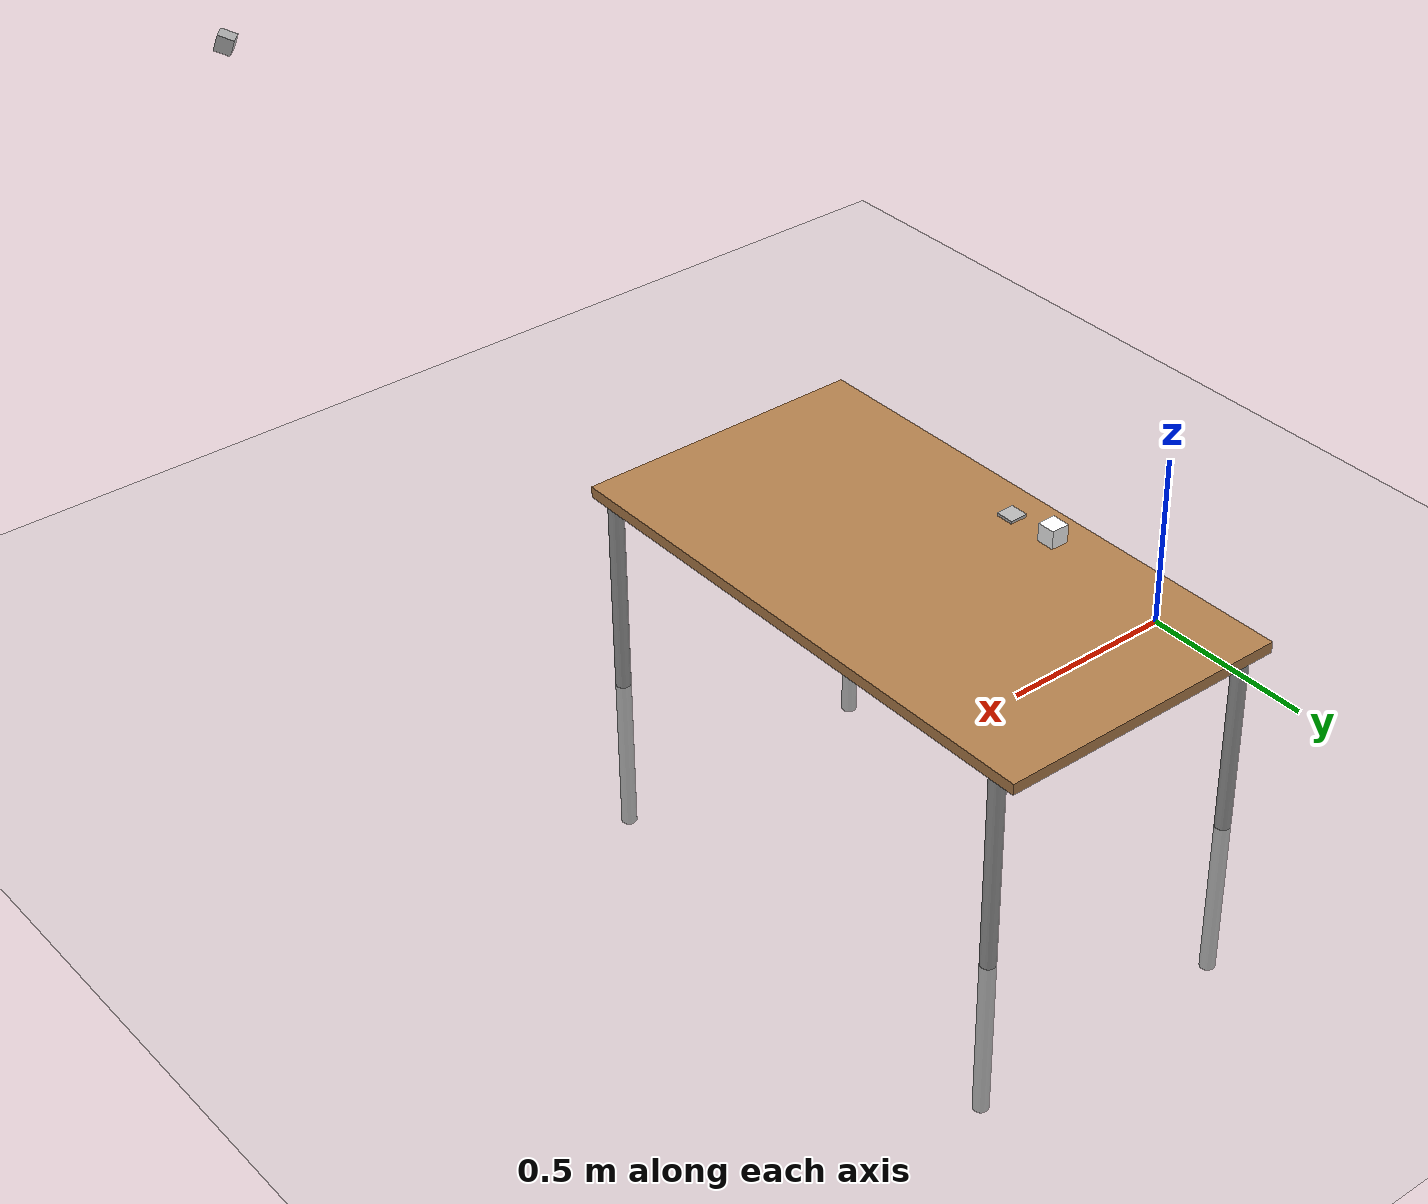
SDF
<?xml version="1.0" ?>
<sdf version="1.6">
  <world name="grab_aruco">

    <include><uri>model://ground_plane</uri></include>
    <include><uri>model://sun</uri></include>

    <!-- 桌心 x=0.85(近沿 0.45), 与机器人前缘留出净空 -->
    <include>
      <name>table</name>
      <uri>model://table</uri>
      <pose>0.85 0 -0.45 0 0 1.5708</pose>
    </include>

    <!-- ArUco 标记牌(平放桌面, 正面朝上) -->
    <include>
      <name>aruco_marker</name>
      <uri>model://aruco_marker</uri>
      <pose>0.55 0.0 0.565 0 0 0</pose>
    </include>
    <!-- 抓取目标物(标记贴在它旁边/上方, 这里放一个木块作被抓物) -->
    <include>
      <name>wood_cube</name>
      <uri>model://wood_cube_5cm</uri>
      <pose>0.55 0.14 0.565 0 0 0</pose>
    </include>

    <!-- ===================== 场景相机(转发到 Web /sim_scene/arm/image_raw) ===================== -->
    <model name="scene_camera">
      <static>true</static>
      <pose>1.8 -1.3 1.7 0 0.35 2.4</pose>
      <link name="link">
        <visual name="vis"><geometry><box><size>0.04 0.04 0.04</size></box></geometry></visual>
        <sensor type="camera" name="scene_cam">
          <always_on>true</always_on>
          <update_rate>15</update_rate>
          <camera name="scene">
            <horizontal_fov>1.2</horizontal_fov>
            <image><width>960</width><height>540</height><format>R8G8B8</format></image>
            <clip><near>0.05</near><far>50</far></clip>
          </camera>
          <plugin name="scene_cam_controller" filename="libgazebo_ros_camera.so">
            <ros>
              <namespace>/sim_scene/arm</namespace>
              <remapping>scene/image_raw:=image_raw</remapping>
              <remapping>scene/camera_info:=camera_info</remapping>
            </ros>
            <camera_name>scene</camera_name>
            <frame_name>scene_camera</frame_name>
          </plugin>
        </sensor>
      </link>
    </model>

    <physics name="default_physics" default="0" type="ode">
      <max_step_size>0.001</max_step_size>
      <real_time_factor>1.0</real_time_factor>
      <real_time_update_rate>1000</real_time_update_rate>
    </physics>

    <gui fullscreen="0">
      <camera name="user_camera"><pose>1.8 -1.3 1.7 0 0.35 2.4</pose></camera>
    </gui>

  </world>
</sdf>

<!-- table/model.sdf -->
<sdf version="1.5">
  <model name="table">
    <static>true</static>
    <link name="link">
      <collision name="surface">
        <pose>0 0 1.0 0 0 0</pose>
        <geometry>
          <box>
            <size>1.5 0.8 0.03</size>
          </box>
        </geometry>
        <surface>
          <friction>
            <ode>
              <mu>0.6</mu>
              <mu2>0.6</mu2>
            </ode>
          </friction>
        </surface>
      </collision>
      <visual name="visual1">
        <pose>0 0 1.0 0 0 0</pose>
        <geometry>
          <box>
            <size>1.5 0.8 0.03</size>
          </box>
        </geometry>
        <material>
          <script>
            <uri>model://media/materials/scripts/gazebo.material</uri>
            <name>Gazebo/Wood</name>
          </script>
        </material>
      </visual>
      <collision name="front_left_leg">
        <pose>0.68 0.38 0.5 0 0 0</pose>
        <geometry>
          <cylinder>
            <radius>0.02</radius>
            <length>1.0</length>
          </cylinder>
        </geometry>
      </collision>
      <visual name="front_left_leg">
        <pose>0.68 0.38 0.5 0 0 0</pose>
        <geometry>
          <cylinder>
            <radius>0.02</radius>
            <length>1.0</length>
          </cylinder>
        </geometry>
        <material>
          <script>
            <uri>model://media/materials/scripts/gazebo.material</uri>
            <name>Gazebo/Grey</name>
          </script>
        </material>
      </visual>
      <collision name="front_right_leg">
        <pose>0.68 -0.38 0.5 0 0 0</pose>
        <geometry>
          <cylinder>
            <radius>0.02</radius>
            <length>1.0</length>
          </cylinder>
        </geometry>
      </collision>
      <visual name="front_right_leg">
        <pose>0.68 -0.38 0.5 0 0 0</pose>
        <geometry>
          <cylinder>
            <radius>0.02</radius>
            <length>1.0</length>
          </cylinder>
        </geometry>
        <material>
          <script>
            <uri>model://media/materials/scripts/gazebo.material</uri>
            <name>Gazebo/Grey</name>
          </script>
        </material>
      </visual>
      <collision name="back_right_leg">
        <pose>-0.68 -0.38 0.5 0 0 0</pose>
        <geometry>
          <cylinder>
            <radius>0.02</radius>
            <length>1.0</length>
          </cylinder>
        </geometry>
      </collision>
      <visual name="back_right_leg">
        <pose>-0.68 -0.38 0.5 0 0 0</pose>
        <geometry>
          <cylinder>
            <radius>0.02</radius>
            <length>1.0</length>
          </cylinder>
        </geometry>
        <material>
          <script>
            <uri>model://media/materials/scripts/gazebo.material</uri>
            <name>Gazebo/Grey</name>
          </script>
        </material>
      </visual>
      <collision name="back_left_leg">
        <pose>-0.68 0.38 0.5 0 0 0</pose>
        <geometry>
          <cylinder>
            <radius>0.02</radius>
            <length>1.0</length>
          </cylinder>
        </geometry>
      </collision>
      <visual name="back_left_leg">
        <pose>-0.68 0.38 0.5 0 0 0</pose>
        <geometry>
          <cylinder>
            <radius>0.02</radius>
            <length>1.0</length>
          </cylinder>
        </geometry>
        <material>
          <script>
            <uri>model://media/materials/scripts/gazebo.material</uri>
            <name>Gazebo/Grey</name>
          </script>
        </material>
      </visual>
    </link>
  </model>
</sdf>

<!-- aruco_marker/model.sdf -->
<sdf version="1.6">
  <model name="aruco_marker">
    <static>true</static>
    <link name="link">
      <visual name="marker">
        <pose>0 0 0.004 0 0 0</pose>
        <geometry><box><size>0.05 0.05 0.008</size></box></geometry>
        <material>
          <script>
            <uri>model://aruco_marker/materials/scripts</uri>
            <uri>model://aruco_marker/materials/textures</uri>
            <name>ArUco/Marker</name>
          </script>
        </material>
      </visual>
    </link>
  </model>
</sdf>

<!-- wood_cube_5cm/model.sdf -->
<sdf version="1.5">
  <model name="wood_cube_5cm">
    <link name="link">
      <pose>0 0 0.025 0 0 0</pose>
      <inertial>
        <mass>0.0565</mass>
        <inertia>
          <ixx>2.3541666666666672e-05</ixx>
          <ixy>0</ixy>
          <ixz>0</ixz>
          <iyy>2.3541666666666672e-05</iyy>
          <iyz>0</iyz>
          <izz>2.3541666666666672e-05</izz>
        </inertia>
      </inertial>

      <collision name="collision">
        <geometry>
          <box>
            <size>0.05 0.05 0.05</size>
          </box>
        </geometry>
        <surface>
          <contact>
            <!-- Red Pine coefficients for longitudinal axis of the wood
                 according to:
                 http://www.fpl.fs.fed.us/documnts/fplgtr/fplgtr113/ch04.pdf -->
            <poissons_ratio>0.347</poissons_ratio>
            <elastic_modulus>8.8e+09</elastic_modulus>
            <ode>
              <kp>100000</kp>
              <kd>1</kd>
              <max_vel>1.0</max_vel>
              <min_depth>0.001</min_depth>
            </ode>
          </contact>
          <friction>
            <torsional>
              <coefficient>1.0</coefficient>
              <use_patch_radius>0</use_patch_radius>
              <surface_radius>0.05</surface_radius>
            </torsional>
          </friction>
        </surface>
      </collision>

      <visual name="visual">
        <geometry>
          <box>
            <size>0.05 0.05 0.05</size>
          </box>
        </geometry>
        <material><diffuse>1 1 1 1</diffuse><specular>0.1 0.1 0.1 1</specular></material>
      </visual>

    </link>
  </model>
</sdf>
